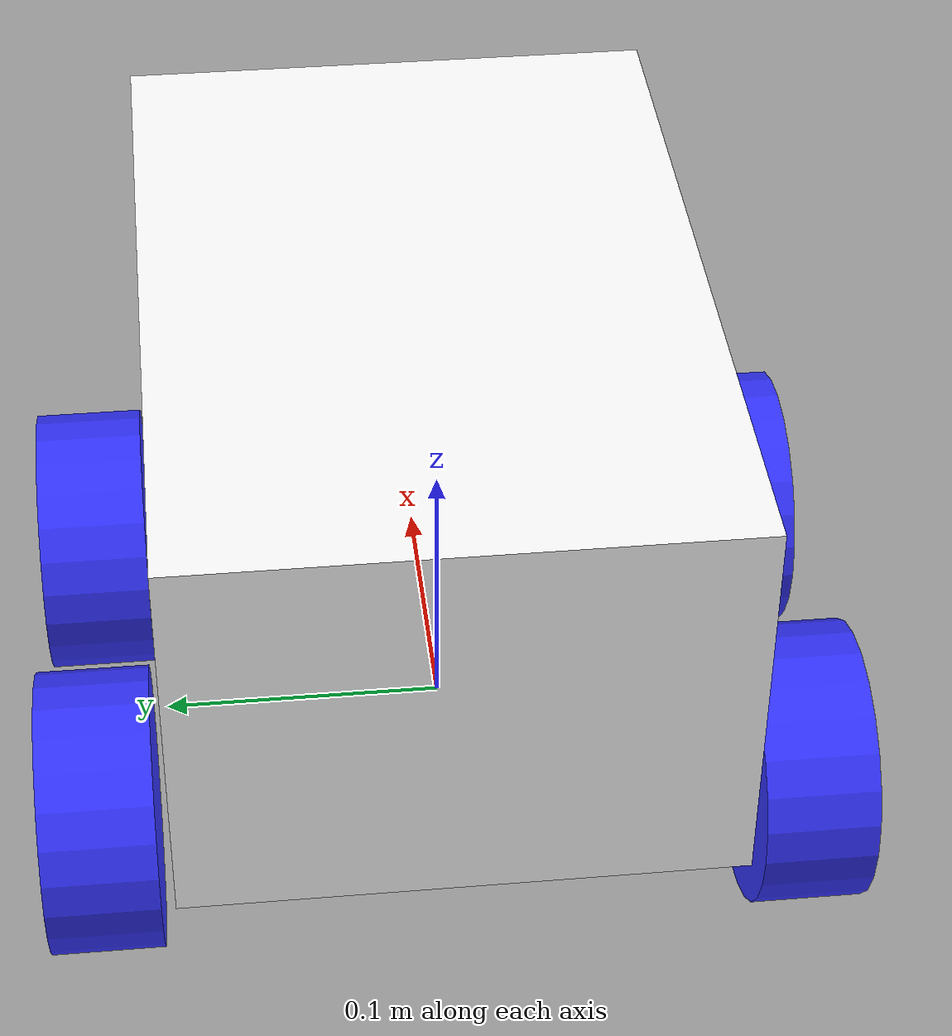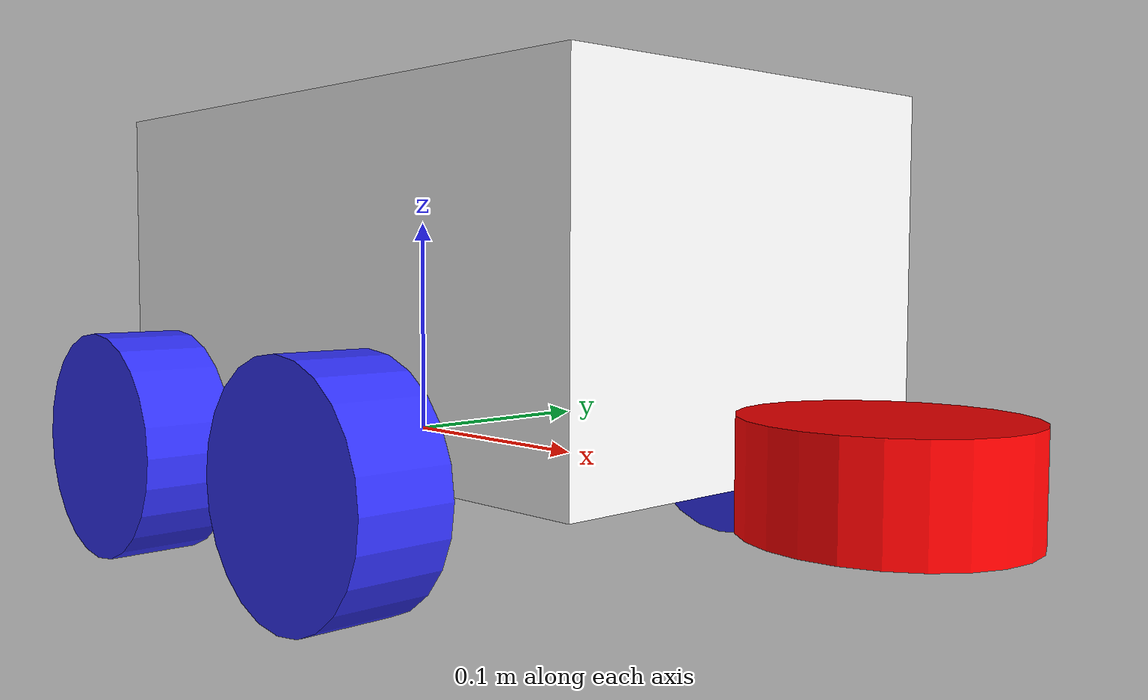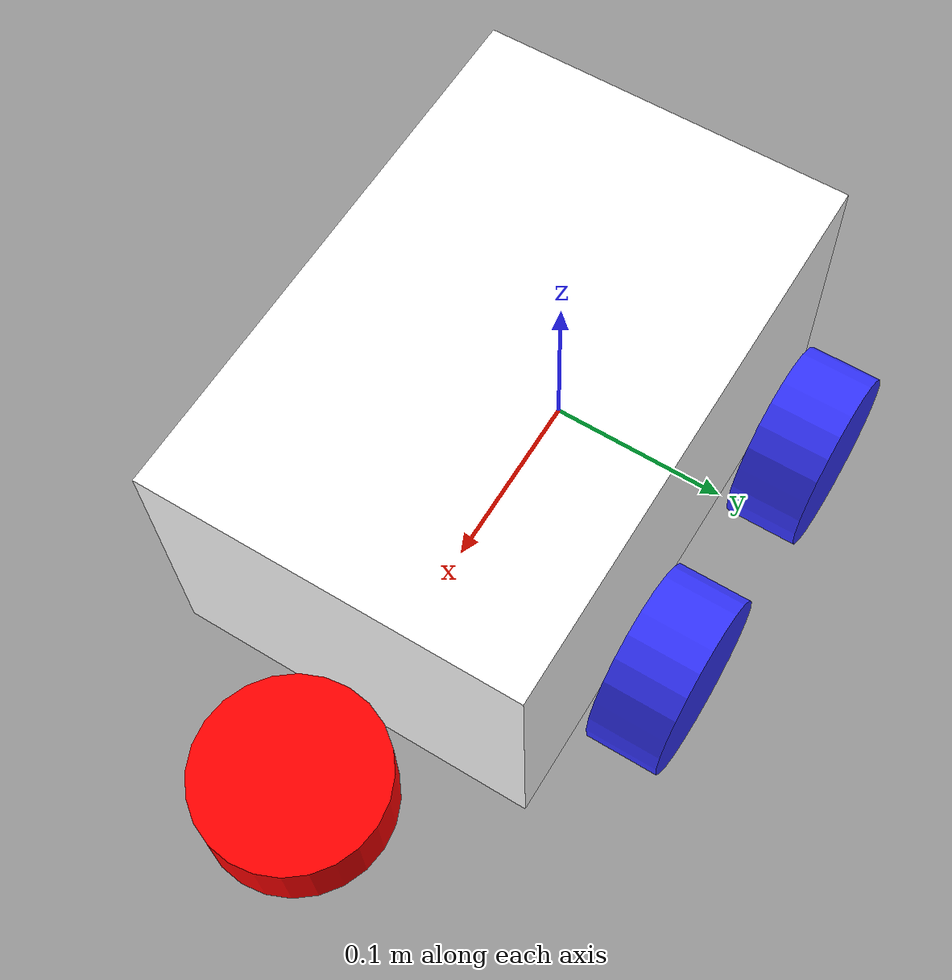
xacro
<?xml version="1.0"?>
<robot xmlns:xacro="http://www.ros.org/wiki/xacro"  name="robot">

    <xacro:include filename="robot_core.xacro" />
    <xacro:arg name="use_ros2_control" default="true"/>
    <!-- CHANGE ACCORDINLY -->
    <xacro:arg name="sim_mode" default="true"/>

    <xacro:if value="$(arg use_ros2_control)">
        <xacro:include filename="ros2_control.xacro" />
    </xacro:if>
    <xacro:unless value="$(arg use_ros2_control)">
        <xacro:include filename="gazebo_control.xacro" />
    </xacro:unless>
    <xacro:if value="$(arg sim_mode)">
        <xacro:include filename="lidar.xacro" />
    </xacro:if>
    <xacro:include filename="world.xacro" />
</robot>

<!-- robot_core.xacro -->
<robot xmlns:xacro="http://www.ros.org/wiki/xacro" >

    <xacro:include filename="inertial_macros.xacro"/>

    <material name="white">
        <color rgba="1 1 1 1" />
    </material>

    <material name="orange">
        <color rgba="1 0.3 0.1 1"/>
    </material>

    <material name="blue">
        <color rgba="0.2 0.2 1 1"/>
    </material>

    <material name="black">
        <color rgba="0 0 0 1"/>
    </material>

    <material name="red">
        <color rgba="1 0 0 1"/>
    </material>

    <!-- BASE LINK -->

    <link name="base_link">

    </link>

    <joint name="base_footprint_joint" type="fixed">
        <parent link="base_link"/>
        <child link="base_footprint"/>
        <origin xyz="0 0 0" rpy="0 0 0"/>
    </joint>

    <link name="base_footprint">
    </link>

    <!-- CHASSIS LINK -->

    <joint name="chassis_joint" type="fixed">
        <parent link="base_link"/>
        <child link="chassis"/>
        <origin xyz="-0.1 0 0"/>
    </joint>

    <link name="chassis">
        <visual>
            <origin xyz="0.15 0 0.075"/>
            <geometry>
                <box size="0.3 0.2 0.15"/>
            </geometry>
            <material name="white"/>
        </visual>
        <collision>
            <origin xyz="0.15 0 0.075"/>
            <geometry>
                <box size="0.3 0.2 0.15"/>
            </geometry>
        </collision>
        <xacro:inertial_box mass="0.5" x="0.3" y="0.2" z="0.15">
            <origin xyz="0.15 0 0.075" rpy="0 0 0"/>
        </xacro:inertial_box>
    </link>

    <!-- LEFT WHEEL LINK -->

    <!-- RIGHT WHEEL LINK -->

    <!-- FRONT LEFT WHEEL LINK -->
	<joint name="front_left_wheel_joint" type="continuous">
    	<parent link="base_link" />
    	<child link="front_left_wheel" />
    	<origin xyz="0.1 0.125 0" rpy="${pi/2} 0 0" />
        <axis xyz="0 0 -1"/>
  	</joint>

	<link name="front_left_wheel">
    	<visual>
            <geometry>
                <cylinder radius="0.05" length="0.04"/>
            </geometry>
            <material name="blue"/>
        </visual>
        <collision>
            <geometry>
                <cylinder radius="0.05" length="0.04"/>
            </geometry>
        </collision>
        <xacro:inertial_cylinder mass="0.1" length="0.04" radius="0.05">
            <origin xyz="0 0 0" rpy="0 0 0"/>
        </xacro:inertial_cylinder>
  	</link>

    <!-- REAR LEFT WHEEL LINK -->
	<joint name="rear_left_wheel_joint" type="continuous">
    	<parent link="base_link" />
    	<child link="rear_left_wheel" />
    	<origin xyz="-0.05 0.125 0" rpy="${pi/2} 0 0" />
        <axis xyz="0 0 -1"/>
  	</joint>

	<link name="rear_left_wheel">
    	<visual>
            <geometry>
                <cylinder radius="0.05" length="0.04"/>
            </geometry>
            <material name="blue"/>
        </visual>
        <collision>
            <geometry>
                <cylinder radius="0.05" length="0.04"/>
            </geometry>
        </collision>
        <xacro:inertial_cylinder mass="0.1" length="0.04" radius="0.05">
            <origin xyz="0 0 0" rpy="0 0 0"/>
        </xacro:inertial_cylinder>
  	</link>

    <!-- FRONT RIGHT WHEEL LINK -->
	<joint name="front_right_wheel_joint" type="continuous">
    	<parent link="base_link" />
    	<child link="front_right_wheel" />
    	<origin xyz="0.1 -0.125 0" rpy="${pi/2} 0 0" />
        <axis xyz="0 0 -1"/>
  	</joint>

	<link name="front_right_wheel">
    	<visual>
            <geometry>
                <cylinder radius="0.05" length="0.04"/>
            </geometry>
            <material name="blue"/>
        </visual>
        <collision>
            <geometry>
                <cylinder radius="0.05" length="0.04"/>
            </geometry>
        </collision>
        <xacro:inertial_cylinder mass="0.1" length="0.04" radius="0.05">
            <origin xyz="0 0 0" rpy="0 0 0"/>
        </xacro:inertial_cylinder>
  	</link>

    <!-- REAR RIGHT WHEEL2 LINK -->
	<joint name="rear_right_wheel_joint" type="continuous">
    	<parent link="base_link" />
    	<child link="rear_right_wheel" />
    	<origin xyz="-0.05 -0.125 0" rpy="${pi/2} 0 0" />
        <axis xyz="0 0 -1"/>
  	</joint>

	<link name="rear_right_wheel">
    	<visual>
            <geometry>
                <cylinder radius="0.05" length="0.04"/>
            </geometry>
            <material name="blue"/>
        </visual>
        <collision>
            <geometry>
                <cylinder radius="0.05" length="0.04"/>
            </geometry>
        </collision>
        <xacro:inertial_cylinder mass="0.1" length="0.04" radius="0.05">
            <origin xyz="0 0 0" rpy="0 0 0"/>
        </xacro:inertial_cylinder>
  	</link>

    <!-- CASTER WHEEL LINK -->

</robot>

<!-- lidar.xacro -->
<robot xmlns:xacro="http://www.ros.org/wiki/xacro" >

    <joint name="laser_joint_bottom" type="fixed">
        <parent link="chassis"/>
        <child link="laser_frame_bottom"/>
        <origin xyz="0.35 0 0.01" rpy="0 0 0"/>
    </joint>

    <link name="laser_frame_bottom">
        <visual>
            <geometry>
                <cylinder radius="0.05" length="0.04"/>
            </geometry>
            <material name="red"/>
        </visual>
        <xacro:inertial_cylinder mass="0.1" length="0.04" radius="0.05">
            <origin xyz="0 0 0" rpy="0 0 0"/>
        </xacro:inertial_cylinder>
    </link>

    <gazebo reference="laser_frame_bottom">
        <material>Gazebo/Red</material>
        <sensor name="lidar_bottom" type="gpu_lidar">
            <pose> 0 0 0 0 0 0 </pose>
            <visualize>true</visualize>
            <update_rate>10</update_rate>
            <lidar>
                <scan>
                    <horizontal>
                        <samples>360</samples>
                        <min_angle>-1.57</min_angle>
                        <max_angle>1.57</max_angle>
                    </horizontal>
                </scan>
                <range>
                    <min>0.02</min>
                    <max>12</max>
                </range>
            </lidar>
            <topic>scan</topic>
            <gz_frame_id>laser_frame_bottom</gz_frame_id>
        </sensor>
    </gazebo>
</robot>
